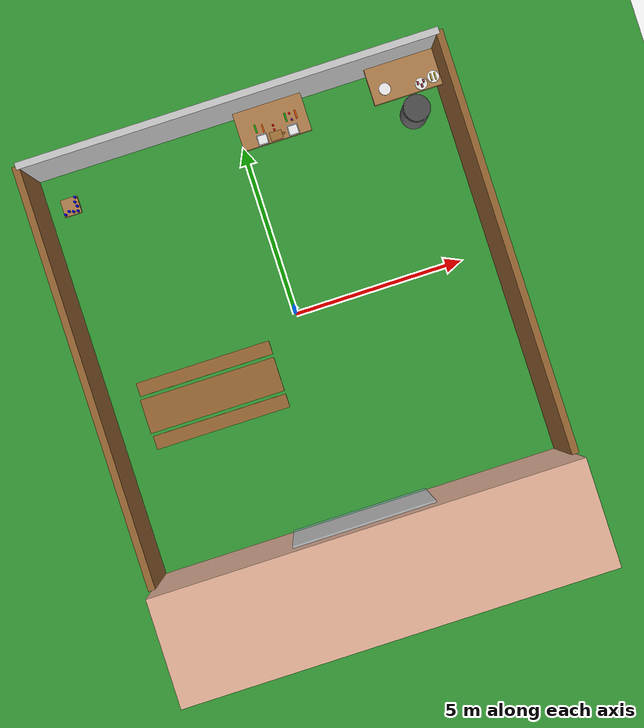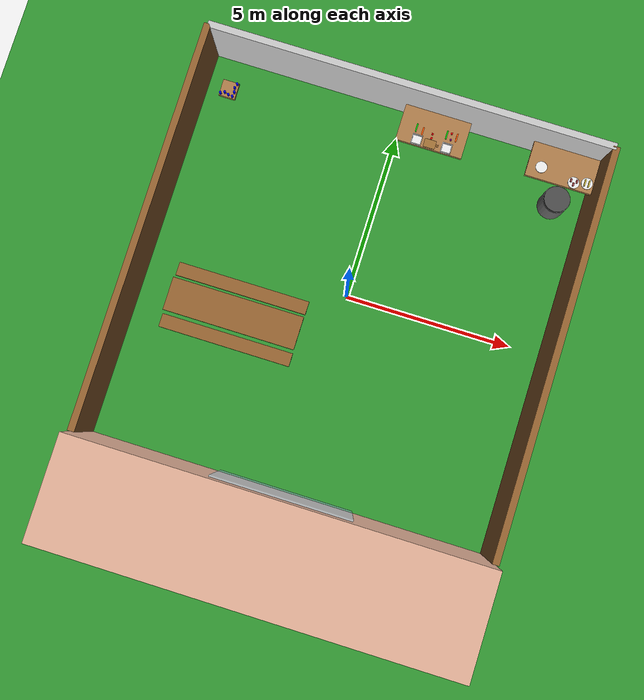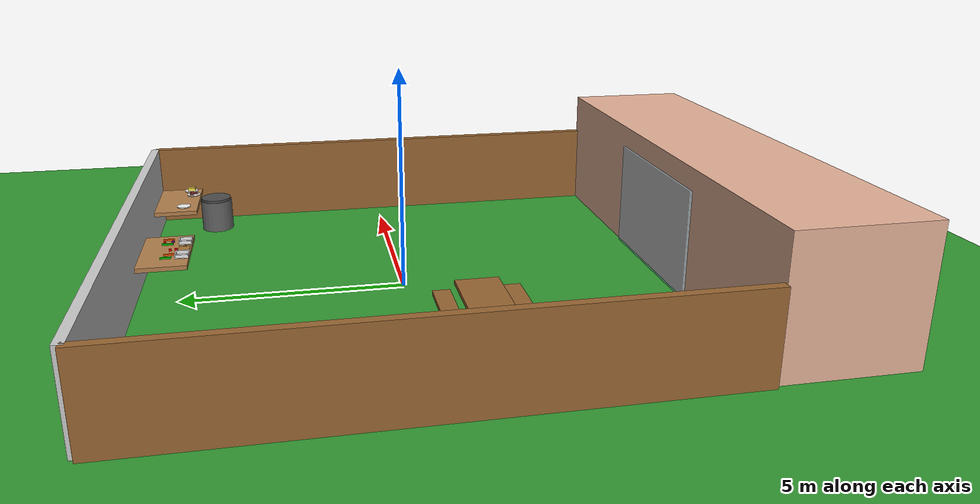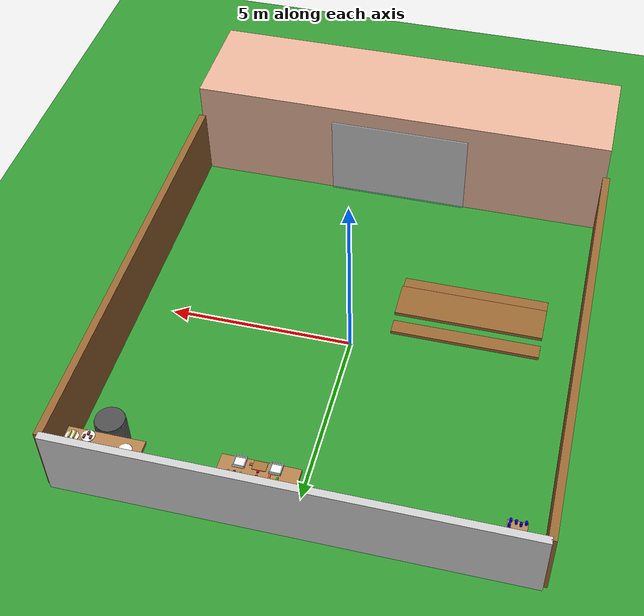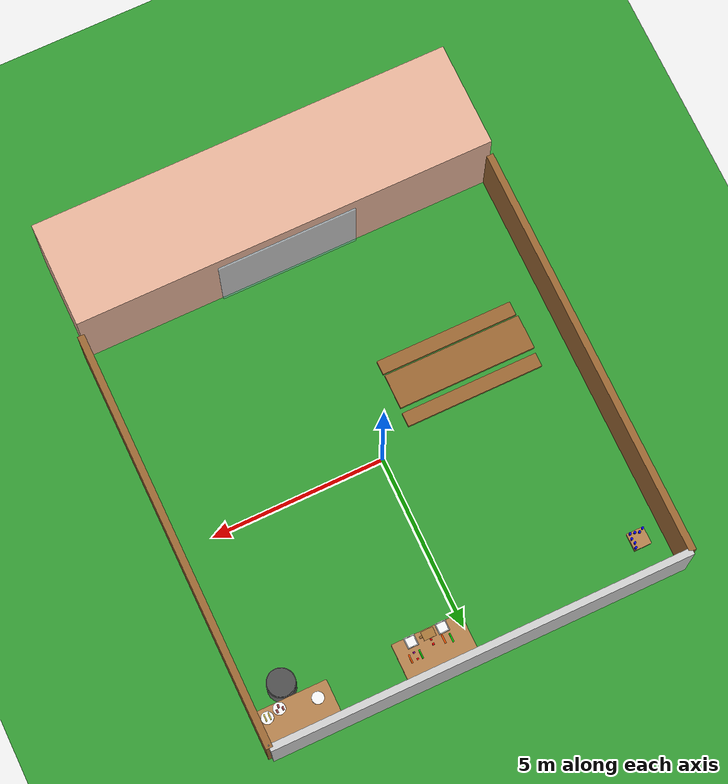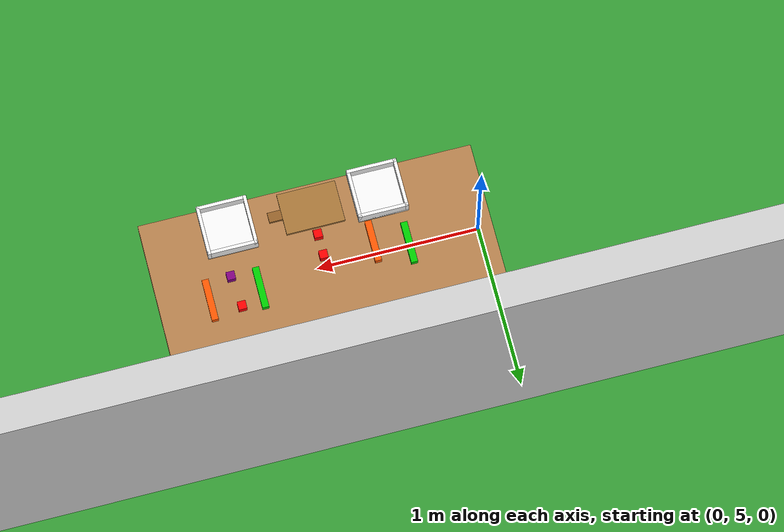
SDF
<sdf version="1.7">
 <world name="backyard">
  <physics name="default_physics" type="dart">
   <max_step_size>0.001</max_step_size>
   <real_time_factor>1</real_time_factor>
   <real_time_update_rate>1000</real_time_update_rate>
  </physics>
  <plugin name="gz::sim::systems::Physics" filename="ignition-gazebo-physics-system"/>
  <plugin name="gz::sim::systems::UserCommands" filename="ignition-gazebo-user-commands-system"/>
  <plugin name="gz::sim::systems::SceneBroadcaster" filename="ignition-gazebo-scene-broadcaster-system"/>
  <plugin name="gz::sim::systems::Contact" filename="ignition-gazebo-contact-system"/>
  <gravity>0 0 -9.8</gravity>
  <atmosphere type="adiabatic"/>
  <scene><ambient>0.6 0.6 0.6 1</ambient><background>0.8 0.9 1 1</background><shadows>false</shadows></scene>
  <light name="sun" type="directional">
   <cast_shadows>false</cast_shadows>
   <pose>0 0 10 0 0 0</pose>
   <diffuse>1 1 1 1</diffuse>
   <specular>0.2 0.2 0.2 1</specular>
   <direction>-0.5 0.5 -1</direction>
  </light>
  <model name="ground">
   <static>true</static>
   <link name="link">
    <collision name="collision">
     <geometry><plane><normal>0 0 1</normal><size>100 100</size></plane></geometry>
     <surface>
      <friction><ode><mu>1.0</mu><mu2>1.0</mu2></ode></friction>
      <contact><ode><min_depth>0.001</min_depth></ode></contact>
     </surface>
    </collision>
    <visual name="visual">
     <geometry><plane><normal>0 0 1</normal><size>14 14</size></plane></geometry>
     <material><ambient>0.2 0.6 0.2 1</ambient><diffuse>0.2 0.6 0.2 1</diffuse></material>
    </visual>
   </link>
  </model>
  <model name="fence_back">
   <static>true</static>
   <pose>0 6 1 0 0 0</pose>
   <link name="link">
    <visual name="visual">
     <geometry><box><size>12 0.2 2</size></box></geometry>
     <material><ambient>0.8 0.8 0.8 1</ambient><diffuse>0.8 0.8 0.8 1</diffuse></material>
    </visual>
   </link>
  </model>
  <model name="fence_left">
   <static>true</static>
   <pose>-6 0 1 0 0 0</pose>
   <link name="link">
    <visual name="visual">
     <geometry><box><size>0.2 12 2</size></box></geometry>
     <material><ambient>0.6 0.4 0.2 1</ambient><diffuse>0.6 0.4 0.2 1</diffuse></material>
    </visual>
   </link>
  </model>
  <model name="fence_right">
   <static>true</static>
   <pose>6 0 1 0 0 0</pose>
   <link name="link">
    <visual name="visual">
     <geometry><box><size>0.2 12 2</size></box></geometry>
     <material><ambient>0.6 0.4 0.2 1</ambient><diffuse>0.6 0.4 0.2 1</diffuse></material>
    </visual>
   </link>
  </model>
  <model name="house">
   <static>true</static>
   <pose>0 -7.5 1.5 0 0 0</pose>
   <link name="link">
    <visual name="visual">
     <geometry><box><size>12 3 3</size></box></geometry>
     <material><ambient>0.9 0.7 0.6 1</ambient><diffuse>0.9 0.7 0.6 1</diffuse></material>
    </visual>
   </link>
  </model>
  <model name="door">
   <static>true</static>
   <pose>0 -6 1.25 0 0 0</pose>
   <link name="link">
    <visual name="visual">
     <geometry><box><size>4 0.1 2.5</size></box></geometry>
     <material><ambient>0.7 0.9 1 0.5</ambient><diffuse>0.7 0.9 1 0.5</diffuse></material>
    </visual>
   </link>
  </model>
  <model name="grill">
   <static>true</static>
   <pose>5 4.43 0 0 0 0</pose>
   <link name="body">
    <pose>0 0 0.40 0 0 0</pose>
    <visual name="visual">
     <geometry><cylinder><radius>0.4</radius><length>0.80</length></cylinder></geometry>
     <material><ambient>0.3 0.3 0.3 1</ambient><diffuse>0.4 0.4 0.4 1</diffuse></material>
    </visual>
   </link>
   <link name="top">
    <pose>0 0 0.83 0 0 0</pose>
    <collision name="collision">
     <geometry><cylinder><radius>0.38</radius><length>0.06</length></cylinder></geometry>
    </collision>
    <visual name="visual">
     <geometry><cylinder><radius>0.38</radius><length>0.06</length></cylinder></geometry>
     <material><ambient>0.2 0.2 0.2 1</ambient><diffuse>0.3 0.3 0.3 1</diffuse></material>
    </visual>
   </link>
  </model>
  <model name="prep_grill">
   <static>true</static>
   <pose>4.9 5.4 0.80 0 0 0</pose>
   <link name="link">
    <collision name="collision"><geometry><box><size>2.0 1.1 0.10</size></box></geometry></collision>
    <visual name="visual">
     <geometry><box><size>2.0 1.1 0.10</size></box></geometry>
     <material><ambient>0.7 0.5 0.3 1</ambient><diffuse>0.7 0.5 0.3 1</diffuse></material>
    </visual>
   </link>
  </model>
  <model name="prep">
   <static>true</static>
   <pose>1.0 5.3 0.80 0 0 0</pose>
   <link name="link">
    <collision name="collision"><geometry><box><size>2.0 1.1 0.10</size></box></geometry></collision>
    <visual name="visual">
     <geometry><box><size>2.0 1.1 0.10</size></box></geometry>
     <material><ambient>0.7 0.5 0.3 1</ambient><diffuse>0.7 0.5 0.3 1</diffuse></material>
    </visual>
   </link>
  </model>
  <model name="table_right">
   <static>true</static>
   <pose>-3.0 -1.5 0.4 0 0 0</pose>
   <link name="link">
    <collision name="collision"><geometry><box><size>4.0 1.0 0.10</size></box></geometry></collision>
    <visual name="visual">
     <geometry><box><size>4.0 1.0 0.10</size></box></geometry>
     <material><ambient>0.6 0.4 0.2 1</ambient><diffuse>0.6 0.4 0.2 1</diffuse></material>
    </visual>
   </link>
  </model>
  <model name="drink_table">
   <static>true</static>
   <pose>-5.2 4.89 0.3 0 0 0</pose>
   <link name="link">
    <collision name="collision"><geometry><box><size>0.5 0.5 0.10</size></box></geometry></collision>
    <visual name="visual">
     <geometry><box><size>0.5 0.5 0.10</size></box></geometry>
     <material><ambient>0.7 0.5 0.3 1</ambient><diffuse>0.7 0.5 0.3 1</diffuse></material>
    </visual>
   </link>
  </model>
  <model name="bench_r1">
   <static>true</static>
   <pose>-3.0 -2.3 0.2 0 0 0</pose>
   <link name="link">
    <visual name="visual">
     <geometry><box><size>4.0 0.4 0.10</size></box></geometry>
     <material><ambient>0.6 0.4 0.2 1</ambient><diffuse>0.6 0.4 0.2 1</diffuse></material>
    </visual>
   </link>
  </model>
  <model name="bench_r2">
   <static>true</static>
   <pose>-3.0 -0.7 0.19 0 0 0</pose>
   <link name="link">
    <collision name="collision"><geometry><box><size>4.0 0.4 0.10</size></box></geometry></collision>
    <visual name="visual">
     <geometry><box><size>4.0 0.4 0.10</size></box></geometry>
     <material><ambient>0.6 0.4 0.2 1</ambient><diffuse>0.6 0.4 0.2 1</diffuse></material>
    </visual>
   </link>
  </model>
  <include><uri>model://meat</uri><name>meat_1</name><pose>5.32 4.97 0.90 0 0 0</pose></include>
  <include><uri>model://meat</uri><name>meat_2</name><pose>5.4 5.08 0.90 0 0 0</pose></include>
  <include><uri>model://meat</uri><name>meat_3</name><pose>5.23 5.07 0.90 0 0 0</pose></include>
  <include><uri>model://garlic_bread</uri><name>garlic_bread_1</name><pose>5.63 5.11 0.92 0 0 0</pose></include>
  <include><uri>model://garlic_bread</uri><name>garlic_bread_2</name><pose>5.75 5.11 0.92 0 0 0</pose></include>
  <include><uri>model://plate</uri><name>plate_1</name><pose>4.3 5.20 0.850 0 0 0</pose></include>
  <include><uri>model://plate</uri><name>plate_2</name><pose>5.70 5.12 0.850 0 0 0</pose></include>
  <include><uri>model://plate</uri><name>plate_3</name><pose>5.32 5.03 0.850 0 0 0</pose></include>
  <include><uri>model://tomato</uri><name>tomato_1</name><pose>1.0 5.20 0.875 0 0 0</pose></include>
  <include><uri>model://tomato</uri><name>tomato_2</name><pose>1.53 5.38 0.87 0 0 0</pose></include>
  <include><uri>model://tomato</uri><name>tomato_3</name><pose>1.0 5.07 0.875 0 0 0</pose></include>
  <include><uri>model://chop_board</uri><name>chop_board_1</name><pose>1.0 4.9 0.86 0 0 0</pose></include>
  <include><uri>model://purple_onion</uri><name>purple_onion_1</name><pose>1.55 5.19 0.87 0 0 0</pose></include>
  <include><uri>model://carrot</uri><name>carrot_1</name><pose>1.7 5.30 0.870 0 0 0</pose></include>
  <include><uri>model://carrot</uri><name>carrot_2</name><pose>0.7 5.19 0.870 0 0 0</pose></include>
  <include><uri>model://cucumber</uri><name>cucumber_1</name><pose>0.5 5.25 0.870 0 0 0</pose></include>
  <include><uri>model://cucumber</uri><name>cucumber_2</name><pose>1.4 5.30 0.870 0 0 0</pose></include>
  <include><uri>model://bowl</uri><name>bowl_1</name><pose>0.6 4.90 0.850 0 0 0</pose></include>
  <include><uri>model://bowl</uri><name>bowl_2</name><pose>1.5 4.90 0.850 0 0 0</pose></include>
  <include><uri>model://drink</uri><name>drink_1</name><pose>-5.0 5.09 0.410 0 0 0</pose></include>
  <include><uri>model://drink</uri><name>drink_2</name><pose>-5.04 4.96 0.410 0 0 0</pose></include>
  <include><uri>model://drink</uri><name>drink_3</name><pose>-5.01 4.83 0.410 0 0 0</pose></include>
  <include><uri>model://drink</uri><name>drink_4</name><pose>-5.03 4.69 0.410 0 0 0</pose></include>
  <include><uri>model://drink</uri><name>drink_5</name><pose>-5.16 4.71 0.410 0 0 0</pose></include>
  <include><uri>model://drink</uri><name>drink_6</name><pose>-5.28 4.75 0.410 0 0 0</pose></include>
  <include><uri>model://drink</uri><name>drink_7</name><pose>-5.40 4.69 0.410 0 0 0</pose></include>
 </world>
</sdf>

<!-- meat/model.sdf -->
<sdf version="1.7">
  <model name="meat">
    <link name="link">

      <inertial>
        <mass>0.20</mass>
        <inertia>
          <ixx>0.000208</ixx>
          <iyy>0.000042</iyy>
          <izz>0.000208</izz>
          <ixy>0</ixy><ixz>0</ixz><iyz>0</iyz>
        </inertia>
      </inertial>

      <collision name="collision">
        <geometry>
          <box><size>0.05 0.10 0.05</size></box>
        </geometry>
        <surface>
          <friction><ode><mu>1.0</mu><mu2>1.0</mu2></ode></friction>
        </surface>
      </collision>

      <visual name="visual">
        <geometry>
          <box><size>0.05 0.10 0.05</size></box>
        </geometry>
        <material>
          <ambient>0.50 0.20 0.20 1</ambient>
          <diffuse>0.60 0.25 0.25 1</diffuse>
        </material>
      </visual>

    </link>
  </model>
</sdf>

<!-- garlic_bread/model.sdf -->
<sdf version="1.7">
  <model name="garlic_bread">
    <link name="link">

      <inertial>
        <mass>0.2</mass>
        <inertia>
          <ixx>0.000773</ixx>
          <iyy>0.000122</iyy>
          <izz>0.000682</izz>
          <ixy>0</ixy><ixz>0</ixz><iyz>0</iyz>
        </inertia>
      </inertial>

      <collision name="collision">
        <geometry>
          <box><size>0.03 0.20 0.08</size></box>
        </geometry>
        <surface>
          <friction><ode><mu>0.6</mu><mu2>0.6</mu2></ode></friction>
        </surface>
      </collision>

      <visual name="visual">
        <geometry>
          <box><size>0.03 0.20 0.08</size></box>
        </geometry>
        <material>
          <ambient>1.0 0.85 0.2 1</ambient>
          <diffuse>1.0 0.90 0.3 1</diffuse>
        </material>
      </visual>

    </link>
  </model>
</sdf>

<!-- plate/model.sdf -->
<sdf version="1.7">
  <model name="plate">
    <static>false</static>
    <link name="link">

      <inertial>
        <mass>0.30</mass>
        <inertia>
          <!-- Approximate as thin disk: ixx=iyy=(1/4)*m*r², izz=(1/2)*m*r² -->
          <ixx>0.001913</ixx>
          <iyy>0.001913</iyy>
          <izz>0.003825</izz>
        </inertia>
      </inertial>

      <!-- Base disc ───────────────────────────────────── -->
      <collision name="base_collision">
        <pose>0 0 0.01 0 0 0</pose>
        <geometry>
          <cylinder><radius>0.15</radius><length>0.02</length></cylinder>
        </geometry>
        <surface><friction><ode><mu>0.8</mu><mu2>0.8</mu2></ode></friction></surface>
      </collision>
      <visual name="base_visual">
        <pose>0 0 0.01 0 0 0</pose>
        <geometry>
          <cylinder><radius>0.15</radius><length>0.02</length></cylinder>
        </geometry>
        <material>
          <ambient>0.95 0.95 0.95 1</ambient>
          <diffuse>1.00 1.00 1.00 1</diffuse>
        </material>
      </visual>

      <!-- Rim ring ─────────────────────────────────────── -->
      <collision name="rim_collision">
        <pose>0 0 0.02 0 0 0</pose>
        <geometry>
          <cylinder><radius>0.17</radius><length>0.02</length></cylinder>
        </geometry>
      </collision>
      <visual name="rim_visual">
        <pose>0 0 0.02 0 0 0</pose>
        <geometry>
          <cylinder><radius>0.17</radius><length>0.02</length></cylinder>
        </geometry>
        <material>
          <ambient>0.90 0.90 0.90 1</ambient>
          <diffuse>0.95 0.95 0.95 1</diffuse>
        </material>
      </visual>

    </link>
  </model>
</sdf>

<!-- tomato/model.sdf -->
<sdf version="1.7">
  <model name="tomato">
    <link name="link">

      <inertial>
        <mass>0.05</mass>
        <inertia>
          <!-- (1/6)*m*a² for cube side a=0.05 -->
          <ixx>0.000021</ixx>
          <iyy>0.000021</iyy>
          <izz>0.000021</izz>
        </inertia>
      </inertial>

      <collision name="collision">
        <geometry>
          <box><size>0.05 0.05 0.05</size></box>
        </geometry>
        <surface>
          <friction><ode><mu>0.7</mu><mu2>0.7</mu2></ode></friction>
        </surface>
      </collision>

      <visual name="visual">
        <geometry>
          <box><size>0.05 0.05 0.05</size></box>
        </geometry>
        <material>
          <ambient>1.0 0.0 0.0 1</ambient>
          <diffuse>1.0 0.0 0.0 1</diffuse>
        </material>
      </visual>

    </link>
  </model>
</sdf>

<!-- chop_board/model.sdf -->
<sdf version="1.7">
  <model name="chop_board">
    <static>false</static>
    <link name="link">

      <inertial>
        <!-- Approximate as solid box 0.35 × 0.25 × 0.02 m, ~1.2 kg -->
        <mass>1.2</mass>
        <inertia>
          <!-- ixx=(1/12)*m*(y²+z²)  iyy=(1/12)*m*(x²+z²)  izz=(1/12)*m*(x²+y²) -->
          <ixx>0.006253</ixx>
          <iyy>0.012260</iyy>
          <izz>0.018300</izz>
          <ixy>0</ixy><ixz>0</ixz><iyz>0</iyz>
        </inertia>
      </inertial>

      <!-- Main board ───────────────────────────────── -->
      <collision name="board_collision">
        <pose>0 0 0.01 0 0 0</pose>
        <geometry><box><size>0.35 0.25 0.02</size></box></geometry>
        <surface><friction><ode><mu>0.9</mu><mu2>0.9</mu2></ode></friction></surface>
      </collision>
      <visual name="board_visual">
        <pose>0 0 0.01 0 0 0</pose>
        <geometry><box><size>0.35 0.25 0.02</size></box></geometry>
        <material>
          <ambient>0.55 0.38 0.18 1</ambient>
          <diffuse>0.65 0.46 0.22 1</diffuse>
          <specular>0.04 0.03 0.02 1</specular>
        </material>
      </visual>

      <!-- Handle ───────────────────────────────────── -->
      <collision name="handle_collision">
        <pose>0.215 0 0.01 0 0 0</pose>
        <geometry><box><size>0.08 0.06 0.02</size></box></geometry>
      </collision>
      <visual name="handle_visual">
        <pose>0.215 0 0.01 0 0 0</pose>
        <geometry><box><size>0.08 0.06 0.02</size></box></geometry>
        <material>
          <ambient>0.50 0.32 0.14 1</ambient>
          <diffuse>0.58 0.38 0.16 1</diffuse>
          <specular>0.04 0.03 0.02 1</specular>
        </material>
      </visual>

      <!-- Juice groove — left ──────────────────────── -->

      <!-- Juice groove — right ─────────────────────── -->

      <!-- Front-left foot ──────────────────────────── -->
      <collision name="foot_front_left_collision">
        <pose>-0.15 0.10 -0.005 0 0 0</pose>
        <geometry><cylinder><radius>0.010</radius><length>0.010</length></cylinder></geometry>
        <surface><friction><ode><mu>1.2</mu><mu2>1.2</mu2></ode></friction></surface>
      </collision>
      <visual name="foot_front_left_visual">
        <pose>-0.15 0.10 -0.005 0 0 0</pose>
        <geometry><cylinder><radius>0.010</radius><length>0.010</length></cylinder></geometry>
        <material>
          <ambient>0.08 0.08 0.08 1</ambient>
          <diffuse>0.10 0.10 0.10 1</diffuse>
          <specular>0.01 0.01 0.01 1</specular>
        </material>
      </visual>

      <!-- Front-right foot ─────────────────────────── -->
      <collision name="foot_front_right_collision">
        <pose>0.15 0.10 -0.005 0 0 0</pose>
        <geometry><cylinder><radius>0.010</radius><length>0.010</length></cylinder></geometry>
        <surface><friction><ode><mu>1.2</mu><mu2>1.2</mu2></ode></friction></surface>
      </collision>
      <visual name="foot_front_right_visual">
        <pose>0.15 0.10 -0.005 0 0 0</pose>
        <geometry><cylinder><radius>0.010</radius><length>0.010</length></cylinder></geometry>
        <material>
          <ambient>0.08 0.08 0.08 1</ambient>
          <diffuse>0.10 0.10 0.10 1</diffuse>
          <specular>0.01 0.01 0.01 1</specular>
        </material>
      </visual>

      <!-- Back-left foot ───────────────────────────── -->
      <collision name="foot_back_left_collision">
        <pose>-0.15 -0.10 -0.005 0 0 0</pose>
        <geometry><cylinder><radius>0.010</radius><length>0.010</length></cylinder></geometry>
        <surface><friction><ode><mu>1.2</mu><mu2>1.2</mu2></ode></friction></surface>
      </collision>
      <visual name="foot_back_left_visual">
        <pose>-0.15 -0.10 -0.005 0 0 0</pose>
        <geometry><cylinder><radius>0.010</radius><length>0.010</length></cylinder></geometry>
        <material>
          <ambient>0.08 0.08 0.08 1</ambient>
          <diffuse>0.10 0.10 0.10 1</diffuse>
          <specular>0.01 0.01 0.01 1</specular>
        </material>
      </visual>

      <!-- Back-right foot ──────────────────────────── -->
      <collision name="foot_back_right_collision">
        <pose>0.15 -0.10 -0.005 0 0 0</pose>
        <geometry><cylinder><radius>0.010</radius><length>0.010</length></cylinder></geometry>
        <surface><friction><ode><mu>1.2</mu><mu2>1.2</mu2></ode></friction></surface>
      </collision>
      <visual name="foot_back_right_visual">
        <pose>0.15 -0.10 -0.005 0 0 0</pose>
        <geometry><cylinder><radius>0.010</radius><length>0.010</length></cylinder></geometry>
        <material>
          <ambient>0.08 0.08 0.08 1</ambient>
          <diffuse>0.10 0.10 0.10 1</diffuse>
          <specular>0.01 0.01 0.01 1</specular>
        </material>
      </visual>

    </link>
  </model>
</sdf>

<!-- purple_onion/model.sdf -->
<sdf version="1.7">
  <model name="purple_onion">
    <link name="link">

      <inertial>
        <mass>0.05</mass>
        <inertia>
          <!-- (1/6)*m*a² for cube side a=0.05 -->
          <ixx>0.000021</ixx>
          <iyy>0.000021</iyy>
          <izz>0.000021</izz>
        </inertia>
      </inertial>

      <collision name="collision">
        <geometry>
          <box><size>0.05 0.05 0.05</size></box>
        </geometry>
        <surface>
          <friction><ode><mu>0.7</mu><mu2>0.7</mu2></ode></friction>
        </surface>
      </collision>

      <visual name="visual">
        <geometry>
          <box><size>0.05 0.05 0.05</size></box>
        </geometry>
        <material>
          <ambient>0.5 0.0 0.5 1</ambient>
          <diffuse>0.5 0.0 0.5 1</diffuse>
          <specular>0.1 0.0 0.1 1</specular>
        </material>
      </visual>

    </link>
  </model>
</sdf>

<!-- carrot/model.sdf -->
<sdf version="1.7">
  <model name="carrot">
    <link name="link">
      <!-- pitch = π/2 lays the carrot on its side (long axis along world X) -->
      <pose>0 0 0 0 1.5708 0</pose>

      <inertial>
        <mass>0.12</mass>
        <inertia>
          <ixx>0.000650</ixx>
          <iyy>0.000008</iyy>
          <izz>0.000650</izz>
        </inertia>
      </inertial>

      <collision name="collision">
        <geometry>
          <box><size>0.04 0.25 0.04</size></box>
        </geometry>
        <surface>
          <friction><ode><mu>0.8</mu><mu2>0.8</mu2></ode></friction>
        </surface>
      </collision>

      <visual name="visual">
        <geometry>
          <box><size>0.04 0.25 0.04</size></box>
        </geometry>
        <material>
          <ambient>1.0 0.333 0.0 1</ambient>
          <diffuse>1.0 0.333 0.0 1</diffuse>
        </material>
      </visual>

    </link>
  </model>
</sdf>

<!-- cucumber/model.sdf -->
<sdf version="1.7">
  <model name="cucumber">
    <link name="link">
      <!-- pitch = π/2 lays the cucumber on its side (long axis along world X) -->
      <pose>0 0 0 0 1.5708 0</pose>

      <inertial>
        <mass>0.10</mass>
        <inertia>
          <ixx>0.000541</ixx>
          <iyy>0.000007</iyy>
          <izz>0.000541</izz>
        </inertia>
      </inertial>

      <collision name="collision">
        <geometry>
          <box><size>0.04 0.25 0.04</size></box>
        </geometry>
        <surface>
          <friction><ode><mu>0.8</mu><mu2>0.8</mu2></ode></friction>
        </surface>
      </collision>

      <visual name="visual">
        <geometry>
          <box><size>0.04 0.25 0.04</size></box>
        </geometry>
        <material>
          <ambient>0.0 0.7 0.0 1</ambient>
          <diffuse>0.0 0.8 0.0 1</diffuse>
        </material>
      </visual>

    </link>
  </model>
</sdf>

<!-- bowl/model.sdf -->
<sdf version="1.7">
  <model name="bowl">
    <static>false</static>
    <link name="link">

      <inertial>
        <mass>0.5</mass>
        <inertia>
          <ixx>0.002</ixx>
          <iyy>0.002</iyy>
          <izz>0.002</izz>
        </inertia>
      </inertial>

      <!-- Base ─────────────────────────────────────────── -->
      <collision name="base_collision">
        <pose>0 0 0.01 0 0 0</pose>
        <geometry><box><size>0.30 0.30 0.02</size></box></geometry>
        <surface><friction><ode><mu>0.8</mu><mu2>0.8</mu2></ode></friction></surface>
      </collision>
      <visual name="base_visual">
        <pose>0 0 0.01 0 0 0</pose>
        <geometry><box><size>0.30 0.30 0.02</size></box></geometry>
        <material><ambient>0.9 0.9 0.9 1</ambient><diffuse>0.95 0.95 0.95 1</diffuse></material>
      </visual>

      <!-- Front wall (+Y face) ─────────────────────────── -->
      <collision name="wall_front_collision">
        <pose>0 0.14 0.05 0 0 0</pose>
        <geometry><box><size>0.30 0.02 0.08</size></box></geometry>
      </collision>
      <visual name="wall_front_visual">
        <pose>0 0.14 0.05 0 0 0</pose>
        <geometry><box><size>0.30 0.02 0.08</size></box></geometry>
        <material><ambient>0.9 0.9 0.9 1</ambient><diffuse>0.95 0.95 0.95 1</diffuse></material>
      </visual>

      <!-- Back wall (-Y face) ──────────────────────────── -->
      <collision name="wall_back_collision">
        <pose>0 -0.14 0.05 0 0 0</pose>
        <geometry><box><size>0.30 0.02 0.08</size></box></geometry>
      </collision>
      <visual name="wall_back_visual">
        <pose>0 -0.14 0.05 0 0 0</pose>
        <geometry><box><size>0.30 0.02 0.08</size></box></geometry>
        <material><ambient>0.9 0.9 0.9 1</ambient><diffuse>0.95 0.95 0.95 1</diffuse></material>
      </visual>

      <!-- Left wall (-X face) ──────────────────────────── -->
      <collision name="wall_left_collision">
        <pose>-0.14 0 0.05 0 0 0</pose>
        <geometry><box><size>0.02 0.30 0.08</size></box></geometry>
      </collision>
      <visual name="wall_left_visual">
        <pose>-0.14 0 0.05 0 0 0</pose>
        <geometry><box><size>0.02 0.30 0.08</size></box></geometry>
        <material><ambient>0.9 0.9 0.9 1</ambient><diffuse>0.95 0.95 0.95 1</diffuse></material>
      </visual>

      <!-- Right wall (+X face) ─────────────────────────── -->
      <collision name="wall_right_collision">
        <pose>0.14 0 0.05 0 0 0</pose>
        <geometry><box><size>0.02 0.30 0.08</size></box></geometry>
      </collision>
      <visual name="wall_right_visual">
        <pose>0.14 0 0.05 0 0 0</pose>
        <geometry><box><size>0.02 0.30 0.08</size></box></geometry>
        <material><ambient>0.9 0.9 0.9 1</ambient><diffuse>0.95 0.95 0.95 1</diffuse></material>
      </visual>

    </link>
  </model>
</sdf>

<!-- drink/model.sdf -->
<sdf version="1.8">
  <model name="drink">
    <static>false</static>
    <link name="can_link">

      <inertial>
        <mass>0.35</mass>
        <inertia>
          <!-- Solid cylinder: ixx=iyy=(1/12)*m*(3r²+h²), izz=(1/2)*m*r² -->
          <ixx>0.000581</ixx>
          <iyy>0.000581</iyy>
          <izz>0.000190</izz>
        </inertia>
      </inertial>

      <collision name="collision">
        <geometry>
          <cylinder>
            <radius>0.033</radius>
            <length>0.12</length>
          </cylinder>
        </geometry>
        <surface>
          <friction><ode><mu>0.6</mu><mu2>0.6</mu2></ode></friction>
        </surface>
      </collision>

      <visual name="visual">
        <geometry>
          <cylinder>
            <radius>0.033</radius>
            <length>0.12</length>
          </cylinder>
        </geometry>
        <material>
          <ambient>0.0 0.0 0.8 1</ambient>
          <diffuse>0.0 0.0 1.0 1</diffuse>
          <specular>0.2 0.2 0.2 1</specular>
        </material>
      </visual>

    </link>
  </model>
</sdf>
